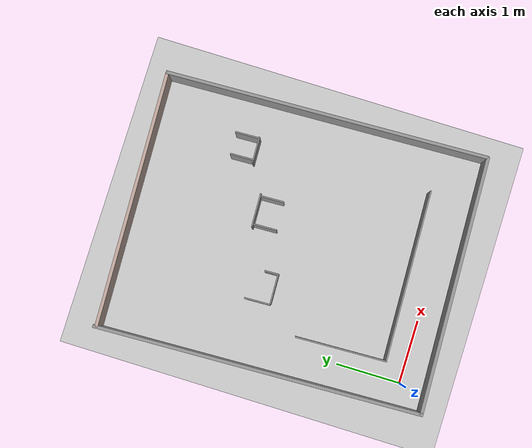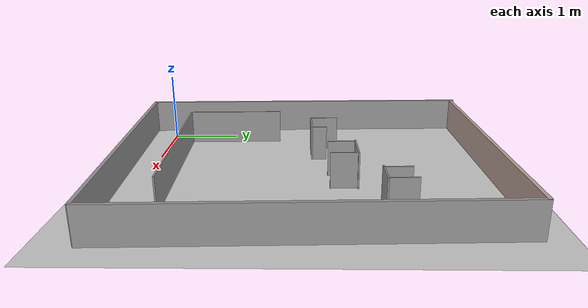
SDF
<sdf version="1.7">
 <world name="default">
  <light name="sun" type="directional">
   <pose>0 0 10 0 -0 0</pose>
   <diffuse>0.8 0.8 0.8 1</diffuse>
   <specular>0.2 0.2 0.2 1</specular>
   <attenuation>
    <range>1000</range>
    <constant>0.9</constant>
    <linear>0.01</linear>
    <quadratic>0.001</quadratic>
   </attenuation>
   <direction>-0.5 0.1 -0.9</direction>
   <spot><inner_angle>0</inner_angle><outer_angle>0</outer_angle><falloff>0</falloff></spot>
  </light>
  <model name="ground_plane">
   <static>1</static>
   <link name="link">
    <collision name="collision">
     <geometry><plane><normal>0 0 1</normal><size>100 100</size></plane></geometry>
     <surface>
      <contact><collide_bitmask>65535</collide_bitmask></contact>
      <friction><ode><mu>100</mu><mu2>50</mu2></ode></friction>
     </surface>
    </collision>
    <visual name="visual">
     <cast_shadows>0</cast_shadows>
     <geometry><plane><normal>0 0 1</normal><size>100 100</size></plane></geometry>
     <material>
      <script><uri>file://media/materials/scripts/gazebo.material</uri><name>Gazebo/Grey</name></script>
     </material>
    </visual>
   </link>
  </model>
  <gravity>0 0 -9.8</gravity>
  <magnetic_field>6e-06 2.3e-05 -4.2e-05</magnetic_field>
  <atmosphere type="adiabatic"/>
  <physics type="ode">
   <max_step_size>0.001</max_step_size>
   <real_time_factor>1</real_time_factor>
   <real_time_update_rate>1000</real_time_update_rate>
  </physics>
  <scene><ambient>0.4 0.4 0.4 1</ambient><background>0.7 0.7 0.7 1</background><shadows>1</shadows></scene>
  <spherical_coordinates>
   <surface_model>EARTH_WGS84</surface_model>
   <latitude_deg>0</latitude_deg>
   <longitude_deg>0</longitude_deg>
   <elevation>0</elevation>
   <heading_deg>0</heading_deg>
  </spherical_coordinates>
  <model name="t5">
   <pose>1.56416 2.19895 0 0 -0 1.60743</pose>
   <link name="Wall_0">
    <collision name="Wall_0_Collision">
     <geometry><box><size>4 0.05 0.5</size></box></geometry>
     <pose>0 0 0.25 0 -0 0</pose>
    </collision>
    <visual name="Wall_0_Visual">
     <pose>0 0 0.25 0 -0 0</pose>
     <geometry><box><size>4 0.05 0.5</size></box></geometry>
     <material>
      <script><uri>file://media/materials/scripts/gazebo.material</uri><name>Gazebo/Grey</name></script>
      <ambient>0.760784 0.662745 0.627451 1</ambient>
     </material>
     <meta><layer>0</layer></meta>
    </visual>
    <pose>2.49755 -0.004878 0 0 -0 -1.5708</pose>
   </link>
   <link name="Wall_11">
    <collision name="Wall_11_Collision">
     <geometry><box><size>1.42 0.02 0.5</size></box></geometry>
     <pose>0 0 0.25 0 -0 0</pose>
    </collision>
    <visual name="Wall_11_Visual">
     <pose>0 0 0.25 0 -0 0</pose>
     <geometry><box><size>1.42 0.02 0.5</size></box></geometry>
     <material>
      <script><uri>file://media/materials/scripts/gazebo.material</uri><name>Gazebo/Grey</name></script>
      <ambient>1 1 1 1</ambient>
     </material>
     <meta><layer>0</layer></meta>
    </visual>
    <pose>-1.12255 1.36412 0 0 -0 0</pose>
   </link>
   <link name="Wall_14">
    <collision name="Wall_14_Collision">
     <geometry><box><size>0.47 0.02 0.5</size></box></geometry>
     <pose>0 0 0.25 0 -0 0</pose>
    </collision>
    <visual name="Wall_14_Visual">
     <pose>0 0 0.25 0 -0 0</pose>
     <geometry><box><size>0.47 0.02 0.5</size></box></geometry>
     <material>
      <script><uri>file://media/materials/scripts/gazebo.material</uri><name>Gazebo/Grey</name></script>
      <ambient>1 1 1 1</ambient>
     </material>
     <meta><layer>0</layer></meta>
    </visual>
    <pose>0.074451 0.75612 0 0 -0 -1.5708</pose>
   </link>
   <link name="Wall_17">
    <collision name="Wall_17_Collision">
     <geometry><box><size>0.4 0.02 0.5</size></box></geometry>
     <pose>0 0 0.25 0 -0 0</pose>
    </collision>
    <visual name="Wall_17_Visual">
     <pose>0 0 0.25 0 -0 0</pose>
     <geometry><box><size>0.4 0.02 0.5</size></box></geometry>
     <material>
      <script><uri>file://media/materials/scripts/gazebo.material</uri><name>Gazebo/Grey</name></script>
      <ambient>1 1 1 1</ambient>
     </material>
     <meta><layer>0</layer></meta>
    </visual>
    <pose>0.274339 0.99988 0 0 -0 0</pose>
   </link>
   <link name="Wall_19">
    <collision name="Wall_19_Collision">
     <geometry><box><size>0.2 0.02 0.5</size></box></geometry>
     <pose>0 0 0.25 0 -0 0</pose>
    </collision>
    <visual name="Wall_19_Visual">
     <pose>0 0 0.25 0 -0 0</pose>
     <geometry><box><size>0.2 0.02 0.5</size></box></geometry>
     <material>
      <script><uri>file://media/materials/scripts/gazebo.material</uri><name>Gazebo/Grey</name></script>
      <ambient>1 1 1 1</ambient>
     </material>
     <meta><layer>0</layer></meta>
    </visual>
    <pose>0.185451 0.53012 0 0 -0 0</pose>
   </link>
   <link name="Wall_2">
    <collision name="Wall_2_Collision">
     <geometry><box><size>5.1 0.05 0.5</size></box></geometry>
     <pose>0 0 0.25 0 -0 0</pose>
    </collision>
    <visual name="Wall_2_Visual">
     <pose>0 0 0.25 0 -0 0</pose>
     <geometry><box><size>5.1 0.05 0.5</size></box></geometry>
     <material>
      <script><uri>file://media/materials/scripts/gazebo.material</uri><name>Gazebo/Grey</name></script>
      <ambient>1 1 1 1</ambient>
     </material>
     <meta><layer>0</layer></meta>
    </visual>
    <pose>2.3e-05 1.99288 0 0 -0 0</pose>
   </link>
   <link name="Wall_21">
    <collision name="Wall_21_Collision">
     <geometry><box><size>0.37 0.02 0.5</size></box></geometry>
     <pose>0 0 0.25 0 -0 0</pose>
    </collision>
    <visual name="Wall_21_Visual">
     <pose>0 0 0.25 0 -0 0</pose>
     <geometry><box><size>0.37 0.02 0.5</size></box></geometry>
     <material>
      <script><uri>file://media/materials/scripts/gazebo.material</uri><name>Gazebo/Grey</name></script>
      <ambient>1 1 1 1</ambient>
     </material>
     <meta><layer>0</layer></meta>
    </visual>
    <pose>0.45272 -0.103722 0 0 -0 0</pose>
   </link>
   <link name="Wall_23">
    <collision name="Wall_23_Collision">
     <geometry><box><size>0.37 0.02 0.5</size></box></geometry>
     <pose>0 0 0.25 0 -0 0</pose>
    </collision>
    <visual name="Wall_23_Visual">
     <pose>0 0 0.25 0 -0 0</pose>
     <geometry><box><size>0.37 0.02 0.5</size></box></geometry>
     <material>
      <script><uri>file://media/materials/scripts/gazebo.material</uri><name>Gazebo/Grey</name></script>
      <ambient>1 1 1 1</ambient>
     </material>
     <meta><layer>0</layer></meta>
    </visual>
    <pose>0.458664 -0.541037 0 0 -0 0</pose>
   </link>
   <link name="Wall_25">
    <collision name="Wall_25_Collision">
     <geometry><box><size>0.52 0.02 0.5</size></box></geometry>
     <pose>0 0 0.25 0 -0 0</pose>
    </collision>
    <visual name="Wall_25_Visual">
     <pose>0 0 0.25 0 -0 0</pose>
     <geometry><box><size>0.52 0.02 0.5</size></box></geometry>
     <material>
      <script><uri>file://media/materials/scripts/gazebo.material</uri><name>Gazebo/Grey</name></script>
      <ambient>1 1 1 1</ambient>
     </material>
     <meta><layer>0</layer></meta>
    </visual>
    <pose>0.645153 -0.317168 0 0 -0 -1.5708</pose>
   </link>
   <link name="Wall_27">
    <collision name="Wall_27_Collision">
     <geometry><box><size>0.37 0.02 0.5</size></box></geometry>
     <pose>0 0 0.25 0 -0 0</pose>
    </collision>
    <visual name="Wall_27_Visual">
     <pose>0 0 0.25 0 -0 0</pose>
     <geometry><box><size>0.37 0.02 0.5</size></box></geometry>
     <material>
      <script><uri>file://media/materials/scripts/gazebo.material</uri><name>Gazebo/Grey</name></script>
      <ambient>1 1 1 1</ambient>
     </material>
     <meta><layer>0</layer></meta>
    </visual>
    <pose>1.07791 -1.38235 0 0 -0 3.14159</pose>
   </link>
   <link name="Wall_29">
    <collision name="Wall_29_Collision">
     <geometry><box><size>0.37 0.02 0.5</size></box></geometry>
     <pose>0 0 0.25 0 -0 0</pose>
    </collision>
    <visual name="Wall_29_Visual">
     <pose>0 0 0.25 0 -0 0</pose>
     <geometry><box><size>0.37 0.02 0.5</size></box></geometry>
     <material>
      <script><uri>file://media/materials/scripts/gazebo.material</uri><name>Gazebo/Grey</name></script>
      <ambient>1 1 1 1</ambient>
     </material>
     <meta><layer>0</layer></meta>
    </visual>
    <pose>1.06719 -1.04128 0 0 -0 0</pose>
   </link>
   <link name="Wall_31">
    <collision name="Wall_31_Collision">
     <geometry><box><size>0.4 0.02 0.5</size></box></geometry>
     <pose>0 0 0.25 0 -0 0</pose>
    </collision>
    <visual name="Wall_31_Visual">
     <pose>0 0 0.25 0 -0 0</pose>
     <geometry><box><size>0.4 0.02 0.5</size></box></geometry>
     <material>
      <script><uri>file://media/materials/scripts/gazebo.material</uri><name>Gazebo/Grey</name></script>
      <ambient>1 1 1 1</ambient>
     </material>
     <meta><layer>0</layer></meta>
    </visual>
    <pose>0.888896 -1.20291 0 0 -0 -1.5708</pose>
   </link>
   <link name="Wall_4">
    <collision name="Wall_4_Collision">
     <geometry><box><size>4 0.05 0.5</size></box></geometry>
     <pose>0 0 0.25 0 -0 0</pose>
    </collision>
    <visual name="Wall_4_Visual">
     <pose>0 0 0.25 0 -0 0</pose>
     <geometry><box><size>4 0.05 0.5</size></box></geometry>
     <material>
      <script><uri>file://media/materials/scripts/gazebo.material</uri><name>Gazebo/Grey</name></script>
      <ambient>1 1 1 1</ambient>
     </material>
     <meta><layer>0</layer></meta>
    </visual>
    <pose>-2.52502 -0.001488 0 0 -0 -1.5708</pose>
   </link>
   <link name="Wall_7">
    <collision name="Wall_7_Collision">
     <geometry><box><size>5.05 0.05 0.5</size></box></geometry>
     <pose>0 0 0.25 0 -0 0</pose>
    </collision>
    <visual name="Wall_7_Visual">
     <pose>0 0 0.25 0 -0 0</pose>
     <geometry><box><size>5.05 0.05 0.5</size></box></geometry>
     <material>
      <script><uri>file://media/materials/scripts/gazebo.material</uri><name>Gazebo/Grey</name></script>
      <ambient>1 1 1 1</ambient>
     </material>
     <meta><layer>0</layer></meta>
    </visual>
    <pose>-0.009549 -1.99288 0 0 -0 0</pose>
   </link>
   <link name="Wall_9">
    <collision name="Wall_9_Collision">
     <geometry><box><size>2.64 0.02 0.5</size></box></geometry>
     <pose>0 0 0.25 0 -0 0</pose>
    </collision>
    <visual name="Wall_9_Visual">
     <pose>0 0 0.25 0 -0 0</pose>
     <geometry><box><size>2.64 0.02 0.5</size></box></geometry>
     <material>
      <script><uri>file://media/materials/scripts/gazebo.material</uri><name>Gazebo/Grey</name></script>
      <ambient>1 1 1 1</ambient>
     </material>
     <meta><layer>0</layer></meta>
    </visual>
    <pose>-1.81826 0.031563 0 0 -0 -1.5708</pose>
   </link>
   <static>1</static>
  </model>
 </world>
</sdf>
